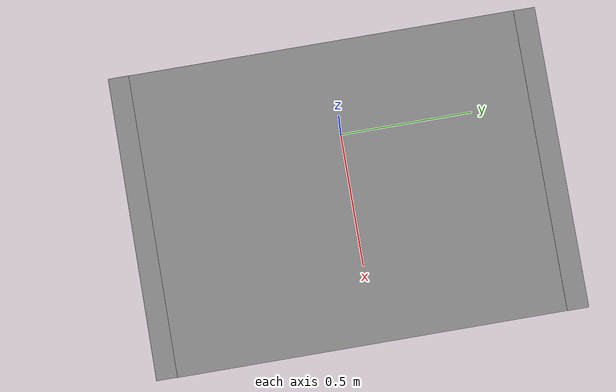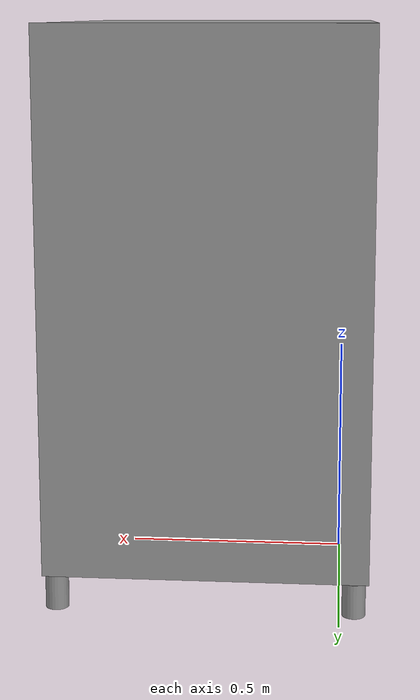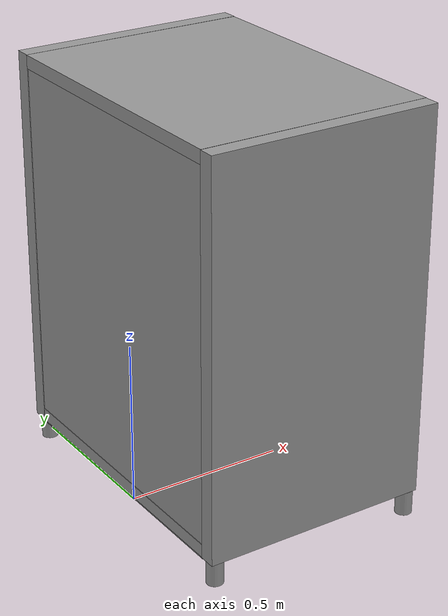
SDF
<?xml version='1.0'?>
<sdf version='1.7'>
  <model name='my_tall_drawer'>
    <link name='link'>
      <inertial>
        <mass>1</mass>
        <inertia>
          <ixx>0.166667</ixx>
          <ixy>0</ixy>
          <ixz>0</ixz>
          <iyy>0.166667</iyy>
          <iyz>0</iyz>
          <izz>0.166667</izz>
        </inertia>
        <pose>0 0 0 0 -0 0</pose>
      </inertial>
      <self_collide>0</self_collide>
      <enable_wind>0</enable_wind>
      <kinematic>0</kinematic>
      <pose>-0.03613 -0.018536 -0.061909 0 -0 0</pose>
      <gravity>1</gravity>
      <visual name='visual'>
        <geometry>
          <box>
            <size>0.05 0.9 1.17</size>
          </box>
        </geometry>
        <material>
          <script>
            <name>Gazebo/Grey</name>
            <uri>file://media/materials/scripts/gazebo.material</uri>
          </script>
          <shader type='pixel'>
            <normal_map>__default__</normal_map>
          </shader>
          <ambient>0.9 0.9 0.9 1</ambient>
          <diffuse>0.9 0.9 0.9 1</diffuse>
          <specular>0.01 0.01 0.01 1</specular>
          <emissive>0 0 0 1</emissive>
        </material>
        <pose>0 0 0.725 0 -0 0</pose>
        <transparency>0</transparency>
        <cast_shadows>1</cast_shadows>
      </visual>
      <collision name='collision'>
        <laser_retro>0</laser_retro>
        <max_contacts>10</max_contacts>
        <pose>0 0 0.725 0 -0 0</pose>
        <geometry>
          <box>
            <size>0.05 0.9 1.17</size>
          </box>
        </geometry>
        <surface>
          <friction>
            <ode>
              <mu>1</mu>
              <mu2>1</mu2>
              <fdir1>0 0 0</fdir1>
              <slip1>0</slip1>
              <slip2>0</slip2>
            </ode>
            <torsional>
              <coefficient>1</coefficient>
              <patch_radius>0</patch_radius>
              <surface_radius>0</surface_radius>
              <use_patch_radius>1</use_patch_radius>
              <ode>
                <slip>0</slip>
              </ode>
            </torsional>
          </friction>
          <bounce>
            <restitution_coefficient>0</restitution_coefficient>
            <threshold>1e+06</threshold>
          </bounce>
          <contact>
            <collide_without_contact>0</collide_without_contact>
            <collide_without_contact_bitmask>1</collide_without_contact_bitmask>
            <collide_bitmask>1</collide_bitmask>
            <ode>
              <soft_cfm>0</soft_cfm>
              <soft_erp>0.2</soft_erp>
              <kp>1e+13</kp>
              <kd>1</kd>
              <max_vel>0.01</max_vel>
              <min_depth>0</min_depth>
            </ode>
            <bullet>
              <split_impulse>1</split_impulse>
              <split_impulse_penetration_threshold>-0.01</split_impulse_penetration_threshold>
              <soft_cfm>0</soft_cfm>
              <soft_erp>0.2</soft_erp>
              <kp>1e+13</kp>
              <kd>1</kd>
            </bullet>
          </contact>
        </surface>
      </collision>
    </link>
    <link name='link_0'>
      <inertial>
        <mass>1</mass>
        <inertia>
          <ixx>0.145833</ixx>
          <ixy>0</ixy>
          <ixz>0</ixz>
          <iyy>0.145833</iyy>
          <iyz>0</iyz>
          <izz>0.125</izz>
        </inertia>
        <pose>0 0 0 0 -0 0</pose>
      </inertial>
      <pose>-0.037041 -0.491807 0.517038 0 -0 0</pose>
      <gravity>1</gravity>
      <self_collide>0</self_collide>
      <kinematic>0</kinematic>
      <enable_wind>0</enable_wind>
      <visual name='visual'>
        <pose>0 0 -0.47 0 -0 0</pose>
        <geometry>
          <cylinder>
            <radius>0.025</radius>
            <length>0.075</length>
          </cylinder>
        </geometry>
        <material>
          <lighting>1</lighting>
          <script>
            <uri>file://media/materials/scripts/gazebo.material</uri>
            <name>Gazebo/Grey</name>
          </script>
          <shader type='pixel'>
            <normal_map>__default__</normal_map>
          </shader>
          <ambient>0.9 0.9 0.9 0</ambient>
          <diffuse>0.9 0.9 0.9 1</diffuse>
          <specular>0.01 0.01 0.01 1</specular>
          <emissive>0 0 0 1</emissive>
        </material>
        <transparency>0</transparency>
        <cast_shadows>1</cast_shadows>
      </visual>
      <collision name='collision'>
        <laser_retro>0</laser_retro>
        <max_contacts>10</max_contacts>
        <pose>0 0 -0.47 0 -0 0</pose>
        <geometry>
          <cylinder>
            <radius>0.025</radius>
            <length>0.075</length>
          </cylinder>
        </geometry>
        <surface>
          <friction>
            <ode>
              <mu>1</mu>
              <mu2>1</mu2>
              <fdir1>0 0 0</fdir1>
              <slip1>0</slip1>
              <slip2>0</slip2>
            </ode>
            <torsional>
              <coefficient>1</coefficient>
              <patch_radius>0</patch_radius>
              <surface_radius>0</surface_radius>
              <use_patch_radius>1</use_patch_radius>
              <ode>
                <slip>0</slip>
              </ode>
            </torsional>
          </friction>
          <bounce>
            <restitution_coefficient>0</restitution_coefficient>
            <threshold>1e+06</threshold>
          </bounce>
          <contact>
            <collide_without_contact>0</collide_without_contact>
            <collide_without_contact_bitmask>1</collide_without_contact_bitmask>
            <collide_bitmask>1</collide_bitmask>
            <ode>
              <soft_cfm>0</soft_cfm>
              <soft_erp>0.2</soft_erp>
              <kp>1e+13</kp>
              <kd>1</kd>
              <max_vel>0.01</max_vel>
              <min_depth>0</min_depth>
            </ode>
            <bullet>
              <split_impulse>1</split_impulse>
              <split_impulse_penetration_threshold>-0.01</split_impulse_penetration_threshold>
              <soft_cfm>0</soft_cfm>
              <soft_erp>0.2</soft_erp>
              <kp>1e+13</kp>
              <kd>1</kd>
            </bullet>
          </contact>
        </surface>
      </collision>
    </link>
    <link name='link_0_clone'>
      <inertial>
        <mass>1</mass>
        <inertia>
          <ixx>0.166667</ixx>
          <ixy>0</ixy>
          <ixz>0</ixz>
          <iyy>0.166667</iyy>
          <iyz>0</iyz>
          <izz>0.166667</izz>
        </inertia>
        <pose>0 0 0 0 -0 0</pose>
      </inertial>
      <pose>0.649567 -0.03449 1.03588 0 -0 0</pose>
      <gravity>0</gravity>
      <self_collide>0</self_collide>
      <kinematic>0</kinematic>
      <enable_wind>0</enable_wind>
      <visual name='visual'>
        <pose>0 0 0 0 -0 0</pose>
        <geometry>
          <box>
            <size>0.012 0.2 0.02</size>
          </box>
        </geometry>
        <material>
          <lighting>1</lighting>
          <script>
            <uri>file://media/materials/scripts/gazebo.material</uri>
            <name>Gazebo/Grey</name>
          </script>
          <shader type='pixel'>
            <normal_map>__default__</normal_map>
          </shader>
          <ambient>0.2 0.2 0.2 0</ambient>
          <diffuse>0.2 0.2 0.2 1</diffuse>
          <specular>0.01 0.01 0.01 1</specular>
          <emissive>0 0 0 1</emissive>
        </material>
        <transparency>0</transparency>
        <cast_shadows>1</cast_shadows>
      </visual>
      <collision name='collision'>
        <laser_retro>0</laser_retro>
        <max_contacts>10</max_contacts>
        <pose>0 0 0 0 -0 0</pose>
        <geometry>
          <box>
            <size>0.012 0.2 0.02</size>
          </box>
        </geometry>
        <surface>
          <friction>
            <ode>
              <mu>1</mu>
              <mu2>1</mu2>
              <fdir1>0 0 0</fdir1>
              <slip1>0</slip1>
              <slip2>0</slip2>
            </ode>
            <torsional>
              <coefficient>1</coefficient>
              <patch_radius>0</patch_radius>
              <surface_radius>0</surface_radius>
              <use_patch_radius>1</use_patch_radius>
              <ode>
                <slip>0</slip>
              </ode>
            </torsional>
          </friction>
          <bounce>
            <restitution_coefficient>0</restitution_coefficient>
            <threshold>1e+06</threshold>
          </bounce>
          <contact>
            <collide_without_contact>0</collide_without_contact>
            <collide_without_contact_bitmask>1</collide_without_contact_bitmask>
            <collide_bitmask>1</collide_bitmask>
            <ode>
              <soft_cfm>0</soft_cfm>
              <soft_erp>0.2</soft_erp>
              <kp>1e+13</kp>
              <kd>1</kd>
              <max_vel>0.01</max_vel>
              <min_depth>0</min_depth>
            </ode>
            <bullet>
              <split_impulse>1</split_impulse>
              <split_impulse_penetration_threshold>-0.01</split_impulse_penetration_threshold>
              <soft_cfm>0</soft_cfm>
              <soft_erp>0.2</soft_erp>
              <kp>1e+13</kp>
              <kd>1</kd>
            </bullet>
          </contact>
        </surface>
      </collision>
    </link>
    <link name='link_0_clone_0'>
      <inertial>
        <mass>1</mass>
        <inertia>
          <ixx>0.145833</ixx>
          <ixy>0</ixy>
          <ixz>0</ixz>
          <iyy>0.145833</iyy>
          <iyz>0</iyz>
          <izz>0.125</izz>
        </inertia>
        <pose>0 0 0 0 -0 0</pose>
      </inertial>
      <pose>0.611334 -0.496528 0.517038 0 -0 0</pose>
      <gravity>1</gravity>
      <self_collide>0</self_collide>
      <kinematic>0</kinematic>
      <enable_wind>0</enable_wind>
      <visual name='visual'>
        <pose>0 0 -0.47 0 -0 0</pose>
        <geometry>
          <cylinder>
            <radius>0.025</radius>
            <length>0.075</length>
          </cylinder>
        </geometry>
        <material>
          <lighting>1</lighting>
          <script>
            <uri>file://media/materials/scripts/gazebo.material</uri>
            <name>Gazebo/Grey</name>
          </script>
          <shader type='pixel'>
            <normal_map>__default__</normal_map>
          </shader>
          <ambient>0.9 0.9 0.9 0</ambient>
          <diffuse>0.9 0.9 0.9 1</diffuse>
          <specular>0.01 0.01 0.01 1</specular>
          <emissive>0 0 0 1</emissive>
        </material>
        <transparency>0</transparency>
        <cast_shadows>1</cast_shadows>
      </visual>
      <collision name='collision'>
        <laser_retro>0</laser_retro>
        <max_contacts>10</max_contacts>
        <pose>0 0 -0.47 0 -0 0</pose>
        <geometry>
          <cylinder>
            <radius>0.025</radius>
            <length>0.075</length>
          </cylinder>
        </geometry>
        <surface>
          <friction>
            <ode>
              <mu>1</mu>
              <mu2>1</mu2>
              <fdir1>0 0 0</fdir1>
              <slip1>0</slip1>
              <slip2>0</slip2>
            </ode>
            <torsional>
              <coefficient>1</coefficient>
              <patch_radius>0</patch_radius>
              <surface_radius>0</surface_radius>
              <use_patch_radius>1</use_patch_radius>
              <ode>
                <slip>0</slip>
              </ode>
            </torsional>
          </friction>
          <bounce>
            <restitution_coefficient>0</restitution_coefficient>
            <threshold>1e+06</threshold>
          </bounce>
          <contact>
            <collide_without_contact>0</collide_without_contact>
            <collide_without_contact_bitmask>1</collide_without_contact_bitmask>
            <collide_bitmask>1</collide_bitmask>
            <ode>
              <soft_cfm>0</soft_cfm>
              <soft_erp>0.2</soft_erp>
              <kp>1e+13</kp>
              <kd>1</kd>
              <max_vel>0.01</max_vel>
              <min_depth>0</min_depth>
            </ode>
            <bullet>
              <split_impulse>1</split_impulse>
              <split_impulse_penetration_threshold>-0.01</split_impulse_penetration_threshold>
              <soft_cfm>0</soft_cfm>
              <soft_erp>0.2</soft_erp>
              <kp>1e+13</kp>
              <kd>1</kd>
            </bullet>
          </contact>
        </surface>
      </collision>
    </link>
    <link name='link_0_clone_1'>
      <inertial>
        <mass>1</mass>
        <inertia>
          <ixx>0.145833</ixx>
          <ixy>0</ixy>
          <ixz>0</ixz>
          <iyy>0.145833</iyy>
          <iyz>0</iyz>
          <izz>0.125</izz>
        </inertia>
        <pose>0 0 0 0 -0 0</pose>
      </inertial>
      <pose>-0.03182 0.454415 0.517038 0 -0 0</pose>
      <gravity>1</gravity>
      <self_collide>0</self_collide>
      <kinematic>0</kinematic>
      <enable_wind>0</enable_wind>
      <visual name='visual'>
        <pose>0 0 -0.47 0 -0 0</pose>
        <geometry>
          <cylinder>
            <radius>0.025</radius>
            <length>0.075</length>
          </cylinder>
        </geometry>
        <material>
          <lighting>1</lighting>
          <script>
            <uri>file://media/materials/scripts/gazebo.material</uri>
            <name>Gazebo/Grey</name>
          </script>
          <shader type='pixel'>
            <normal_map>__default__</normal_map>
          </shader>
          <ambient>0.9 0.9 0.9 0</ambient>
          <diffuse>0.9 0.9 0.9 1</diffuse>
          <specular>0.01 0.01 0.01 1</specular>
          <emissive>0 0 0 1</emissive>
        </material>
        <transparency>0</transparency>
        <cast_shadows>1</cast_shadows>
      </visual>
      <collision name='collision'>
        <laser_retro>0</laser_retro>
        <max_contacts>10</max_contacts>
        <pose>0 0 -0.47 0 -0 0</pose>
        <geometry>
          <cylinder>
            <radius>0.025</radius>
            <length>0.075</length>
          </cylinder>
        </geometry>
        <surface>
          <friction>
            <ode>
              <mu>1</mu>
              <mu2>1</mu2>
              <fdir1>0 0 0</fdir1>
              <slip1>0</slip1>
              <slip2>0</slip2>
            </ode>
            <torsional>
              <coefficient>1</coefficient>
              <patch_radius>0</patch_radius>
              <surface_radius>0</surface_radius>
              <use_patch_radius>1</use_patch_radius>
              <ode>
                <slip>0</slip>
              </ode>
            </torsional>
          </friction>
          <bounce>
            <restitution_coefficient>0</restitution_coefficient>
            <threshold>1e+06</threshold>
          </bounce>
          <contact>
            <collide_without_contact>0</collide_without_contact>
            <collide_without_contact_bitmask>1</collide_without_contact_bitmask>
            <collide_bitmask>1</collide_bitmask>
            <ode>
              <soft_cfm>0</soft_cfm>
              <soft_erp>0.2</soft_erp>
              <kp>1e+13</kp>
              <kd>1</kd>
              <max_vel>0.01</max_vel>
              <min_depth>0</min_depth>
            </ode>
            <bullet>
              <split_impulse>1</split_impulse>
              <split_impulse_penetration_threshold>-0.01</split_impulse_penetration_threshold>
              <soft_cfm>0</soft_cfm>
              <soft_erp>0.2</soft_erp>
              <kp>1e+13</kp>
              <kd>1</kd>
            </bullet>
          </contact>
        </surface>
      </collision>
    </link>
    <link name='link_0_clone_2'>
      <inertial>
        <mass>1</mass>
        <inertia>
          <ixx>0.145833</ixx>
          <ixy>0</ixy>
          <ixz>0</ixz>
          <iyy>0.145833</iyy>
          <iyz>0</iyz>
          <izz>0.125</izz>
        </inertia>
        <pose>0 0 0 0 -0 0</pose>
      </inertial>
      <pose>0.607914 0.452464 0.517038 0 -0 0</pose>
      <gravity>1</gravity>
      <self_collide>0</self_collide>
      <kinematic>0</kinematic>
      <enable_wind>0</enable_wind>
      <visual name='visual'>
        <pose>0 0 -0.47 0 -0 0</pose>
        <geometry>
          <cylinder>
            <radius>0.025</radius>
            <length>0.075</length>
          </cylinder>
        </geometry>
        <material>
          <lighting>1</lighting>
          <script>
            <uri>file://media/materials/scripts/gazebo.material</uri>
            <name>Gazebo/Grey</name>
          </script>
          <shader type='pixel'>
            <normal_map>__default__</normal_map>
          </shader>
          <ambient>0.9 0.9 0.9 0</ambient>
          <diffuse>0.9 0.9 0.9 1</diffuse>
          <specular>0.01 0.01 0.01 1</specular>
          <emissive>0 0 0 1</emissive>
        </material>
        <transparency>0</transparency>
        <cast_shadows>1</cast_shadows>
      </visual>
      <collision name='collision'>
        <laser_retro>0</laser_retro>
        <max_contacts>10</max_contacts>
        <pose>0 0 -0.47 0 -0 0</pose>
        <geometry>
          <cylinder>
            <radius>0.025</radius>
            <length>0.075</length>
          </cylinder>
        </geometry>
        <surface>
          <friction>
            <ode>
              <mu>1</mu>
              <mu2>1</mu2>
              <fdir1>0 0 0</fdir1>
              <slip1>0</slip1>
              <slip2>0</slip2>
            </ode>
            <torsional>
              <coefficient>1</coefficient>
              <patch_radius>0</patch_radius>
              <surface_radius>0</surface_radius>
              <use_patch_radius>1</use_patch_radius>
              <ode>
                <slip>0</slip>
              </ode>
            </torsional>
          </friction>
          <bounce>
            <restitution_coefficient>0</restitution_coefficient>
            <threshold>1e+06</threshold>
          </bounce>
          <contact>
            <collide_without_contact>0</collide_without_contact>
            <collide_without_contact_bitmask>1</collide_without_contact_bitmask>
            <collide_bitmask>1</collide_bitmask>
            <ode>
              <soft_cfm>0</soft_cfm>
              <soft_erp>0.2</soft_erp>
              <kp>1e+13</kp>
              <kd>1</kd>
              <max_vel>0.01</max_vel>
              <min_depth>0</min_depth>
            </ode>
            <bullet>
              <split_impulse>1</split_impulse>
              <split_impulse_penetration_threshold>-0.01</split_impulse_penetration_threshold>
              <soft_cfm>0</soft_cfm>
              <soft_erp>0.2</soft_erp>
              <kp>1e+13</kp>
              <kd>1</kd>
            </bullet>
          </contact>
        </surface>
      </collision>
    </link>
    <link name='link_0_clone_clone'>
      <inertial>
        <mass>1</mass>
        <inertia>
          <ixx>0.166667</ixx>
          <ixy>0</ixy>
          <ixz>0</ixz>
          <iyy>0.166667</iyy>
          <iyz>0</iyz>
          <izz>0.166667</izz>
        </inertia>
        <pose>0 0 0 0 -0 0</pose>
      </inertial>
      <pose>0.648574 -0.032127 0.308738 0 -0 0</pose>
      <gravity>0</gravity>
      <self_collide>0</self_collide>
      <kinematic>0</kinematic>
      <enable_wind>0</enable_wind>
      <visual name='visual'>
        <pose>0 0 0 0 -0 0</pose>
        <geometry>
          <box>
            <size>0.012 0.2 0.02</size>
          </box>
        </geometry>
        <material>
          <lighting>1</lighting>
          <script>
            <uri>file://media/materials/scripts/gazebo.material</uri>
            <name>Gazebo/Grey</name>
          </script>
          <shader type='pixel'>
            <normal_map>__default__</normal_map>
          </shader>
          <ambient>0.2 0.2 0.2 0</ambient>
          <diffuse>0.2 0.2 0.2 1</diffuse>
          <specular>0.01 0.01 0.01 1</specular>
          <emissive>0 0 0 1</emissive>
        </material>
        <transparency>0</transparency>
        <cast_shadows>1</cast_shadows>
      </visual>
      <collision name='collision'>
        <laser_retro>0</laser_retro>
        <max_contacts>10</max_contacts>
        <pose>0 0 0 0 -0 0</pose>
        <geometry>
          <box>
            <size>0.012 0.2 0.02</size>
          </box>
        </geometry>
        <surface>
          <friction>
            <ode>
              <mu>1</mu>
              <mu2>1</mu2>
              <fdir1>0 0 0</fdir1>
              <slip1>0</slip1>
              <slip2>0</slip2>
            </ode>
            <torsional>
              <coefficient>1</coefficient>
              <patch_radius>0</patch_radius>
              <surface_radius>0</surface_radius>
              <use_patch_radius>1</use_patch_radius>
              <ode>
                <slip>0</slip>
              </ode>
            </torsional>
          </friction>
          <bounce>
            <restitution_coefficient>0</restitution_coefficient>
            <threshold>1e+06</threshold>
          </bounce>
          <contact>
            <collide_without_contact>0</collide_without_contact>
            <collide_without_contact_bitmask>1</collide_without_contact_bitmask>
            <collide_bitmask>1</collide_bitmask>
            <ode>
              <soft_cfm>0</soft_cfm>
              <soft_erp>0.2</soft_erp>
              <kp>1e+13</kp>
              <kd>1</kd>
              <max_vel>0.01</max_vel>
              <min_depth>0</min_depth>
            </ode>
            <bullet>
              <split_impulse>1</split_impulse>
              <split_impulse_penetration_threshold>-0.01</split_impulse_penetration_threshold>
              <soft_cfm>0</soft_cfm>
              <soft_erp>0.2</soft_erp>
              <kp>1e+13</kp>
              <kd>1</kd>
            </bullet>
          </contact>
        </surface>
      </collision>
    </link>
    <link name='link_0_clone_clone_0'>
      <inertial>
        <mass>1</mass>
        <inertia>
          <ixx>0.166667</ixx>
          <ixy>0</ixy>
          <ixz>0</ixz>
          <iyy>0.166667</iyy>
          <iyz>0</iyz>
          <izz>0.166667</izz>
        </inertia>
        <pose>0 0 0 0 -0 0</pose>
      </inertial>
      <pose>0.650881 -0.037424 0.670231 0 -0 0</pose>
      <gravity>0</gravity>
      <self_collide>0</self_collide>
      <kinematic>0</kinematic>
      <enable_wind>0</enable_wind>
      <visual name='visual'>
        <pose>0 0 0 0 -0 0</pose>
        <geometry>
          <box>
            <size>0.012 0.2 0.02</size>
          </box>
        </geometry>
        <material>
          <lighting>1</lighting>
          <script>
            <uri>file://media/materials/scripts/gazebo.material</uri>
            <name>Gazebo/Grey</name>
          </script>
          <shader type='pixel'>
            <normal_map>__default__</normal_map>
          </shader>
          <ambient>0.2 0.2 0.2 0</ambient>
          <diffuse>0.2 0.2 0.2 1</diffuse>
          <specular>0.01 0.01 0.01 1</specular>
          <emissive>0 0 0 1</emissive>
        </material>
        <transparency>0</transparency>
        <cast_shadows>1</cast_shadows>
      </visual>
      <collision name='collision'>
        <laser_retro>0</laser_retro>
        <max_contacts>10</max_contacts>
        <pose>0 0 0 0 -0 0</pose>
        <geometry>
          <box>
            <size>0.012 0.2 0.02</size>
          </box>
        </geometry>
        <surface>
          <friction>
            <ode>
              <mu>1</mu>
              <mu2>1</mu2>
              <fdir1>0 0 0</fdir1>
              <slip1>0</slip1>
              <slip2>0</slip2>
            </ode>
            <torsional>
              <coefficient>1</coefficient>
              <patch_radius>0</patch_radius>
              <surface_radius>0</surface_radius>
              <use_patch_radius>1</use_patch_radius>
              <ode>
                <slip>0</slip>
              </ode>
            </torsional>
          </friction>
          <bounce>
            <restitution_coefficient>0</restitution_coefficient>
            <threshold>1e+06</threshold>
          </bounce>
          <contact>
            <collide_without_contact>0</collide_without_contact>
            <collide_without_contact_bitmask>1</collide_without_contact_bitmask>
            <collide_bitmask>1</collide_bitmask>
            <ode>
              <soft_cfm>0</soft_cfm>
              <soft_erp>0.2</soft_erp>
              <kp>1e+13</kp>
              <kd>1</kd>
              <max_vel>0.01</max_vel>
              <min_depth>0</min_depth>
            </ode>
            <bullet>
              <split_impulse>1</split_impulse>
              <split_impulse_penetration_threshold>-0.01</split_impulse_penetration_threshold>
              <soft_cfm>0</soft_cfm>
              <soft_erp>0.2</soft_erp>
              <kp>1e+13</kp>
              <kd>1</kd>
            </bullet>
          </contact>
        </surface>
      </collision>
    </link>
    <link name='link_clone'>
      <inertial>
        <mass>1</mass>
        <inertia>
          <ixx>0.166667</ixx>
          <ixy>0</ixy>
          <ixz>0</ixz>
          <iyy>0.166667</iyy>
          <iyz>0</iyz>
          <izz>0.166667</izz>
        </inertia>
        <pose>0 0 0 0 -0 0</pose>
      </inertial>
      <self_collide>0</self_collide>
      <enable_wind>0</enable_wind>
      <kinematic>0</kinematic>
      <pose>0.28891 -0.018651 -1.19613 1.1e-05 -0.001065 2e-06</pose>
      <gravity>1</gravity>
      <visual name='visual'>
        <geometry>
          <box>
            <size>0.7 0.9 0.04</size>
          </box>
        </geometry>
        <material>
          <script>
            <name>Gazebo/Grey</name>
            <uri>file://media/materials/scripts/gazebo.material</uri>
          </script>
          <shader type='pixel'>
            <normal_map>__default__</normal_map>
          </shader>
          <ambient>0.9 0.9 0.9 1</ambient>
          <diffuse>0.9 0.9 0.9 1</diffuse>
          <specular>0.01 0.01 0.01 1</specular>
          <emissive>0 0 0 1</emissive>
        </material>
        <pose>0 0 1.3 0 -0 0</pose>
        <transparency>0</transparency>
        <cast_shadows>1</cast_shadows>
      </visual>
      <collision name='collision'>
        <laser_retro>0</laser_retro>
        <max_contacts>10</max_contacts>
        <pose>0 0 1.3 0 -0 0</pose>
        <geometry>
          <box>
            <size>0.7 0.9 0.04</size>
          </box>
        </geometry>
        <surface>
          <friction>
            <ode>
              <mu>1</mu>
              <mu2>1</mu2>
              <fdir1>0 0 0</fdir1>
              <slip1>0</slip1>
              <slip2>0</slip2>
            </ode>
            <torsional>
              <coefficient>1</coefficient>
              <patch_radius>0</patch_radius>
              <surface_radius>0</surface_radius>
              <use_patch_radius>1</use_patch_radius>
              <ode>
                <slip>0</slip>
              </ode>
            </torsional>
          </friction>
          <bounce>
            <restitution_coefficient>0</restitution_coefficient>
            <threshold>1e+06</threshold>
          </bounce>
          <contact>
            <collide_without_contact>0</collide_without_contact>
            <collide_without_contact_bitmask>1</collide_without_contact_bitmask>
            <collide_bitmask>1</collide_bitmask>
            <ode>
              <soft_cfm>0</soft_cfm>
              <soft_erp>0.2</soft_erp>
              <kp>1e+13</kp>
              <kd>1</kd>
              <max_vel>0.01</max_vel>
              <min_depth>0</min_depth>
            </ode>
            <bullet>
              <split_impulse>1</split_impulse>
              <split_impulse_penetration_threshold>-0.01</split_impulse_penetration_threshold>
              <soft_cfm>0</soft_cfm>
              <soft_erp>0.2</soft_erp>
              <kp>1e+13</kp>
              <kd>1</kd>
            </bullet>
          </contact>
        </surface>
      </collision>
    </link>
    <link name='link_clone_0'>
      <inertial>
        <mass>1</mass>
        <inertia>
          <ixx>0.166667</ixx>
          <ixy>0</ixy>
          <ixz>0</ixz>
          <iyy>0.166667</iyy>
          <iyz>0</iyz>
          <izz>0.166667</izz>
        </inertia>
        <pose>0 0 0 0 -0 0</pose>
      </inertial>
      <self_collide>0</self_collide>
      <enable_wind>0</enable_wind>
      <kinematic>0</kinematic>
      <pose>0.285628 -0.49449 -0.040786 0 -0 0</pose>
      <gravity>1</gravity>
      <visual name='visual'>
        <geometry>
          <box>
            <size>0.05 0.7 1.17</size>
          </box>
        </geometry>
        <material>
          <script>
            <name>Gazebo/Grey</name>
            <uri>file://media/materials/scripts/gazebo.material</uri>
          </script>
          <shader type='pixel'>
            <normal_map>__default__</normal_map>
          </shader>
          <ambient>0.9 0.9 0.9 1</ambient>
          <diffuse>0.9 0.9 0.9 1</diffuse>
          <specular>0.01 0.01 0.01 1</specular>
          <emissive>0 0 0 1</emissive>
        </material>
        <pose>0 0 0.71 0 -0 1.5707</pose>
        <transparency>0</transparency>
        <cast_shadows>1</cast_shadows>
      </visual>
      <collision name='collision'>
        <laser_retro>0</laser_retro>
        <max_contacts>10</max_contacts>
        <pose>0 0 0.71 0 -0 1.5707</pose>
        <geometry>
          <box>
            <size>0.05 0.7 1.17</size>
          </box>
        </geometry>
        <surface>
          <friction>
            <ode>
              <mu>1</mu>
              <mu2>1</mu2>
              <fdir1>0 0 0</fdir1>
              <slip1>0</slip1>
              <slip2>0</slip2>
            </ode>
            <torsional>
              <coefficient>1</coefficient>
              <patch_radius>0</patch_radius>
              <surface_radius>0</surface_radius>
              <use_patch_radius>1</use_patch_radius>
              <ode>
                <slip>0</slip>
              </ode>
            </torsional>
          </friction>
          <bounce>
            <restitution_coefficient>0</restitution_coefficient>
            <threshold>1e+06</threshold>
          </bounce>
          <contact>
            <collide_without_contact>0</collide_without_contact>
            <collide_without_contact_bitmask>1</collide_without_contact_bitmask>
            <collide_bitmask>1</collide_bitmask>
            <ode>
              <soft_cfm>0</soft_cfm>
              <soft_erp>0.2</soft_erp>
              <kp>1e+13</kp>
              <kd>1</kd>
              <max_vel>0.01</max_vel>
              <min_depth>0</min_depth>
            </ode>
            <bullet>
              <split_impulse>1</split_impulse>
              <split_impulse_penetration_threshold>-0.01</split_impulse_penetration_threshold>
              <soft_cfm>0</soft_cfm>
              <soft_erp>0.2</soft_erp>
              <kp>1e+13</kp>
              <kd>1</kd>
            </bullet>
          </contact>
        </surface>
      </collision>
    </link>
    <link name='link_clone_0_clone'>
      <inertial>
        <mass>1</mass>
        <inertia>
          <ixx>0.166667</ixx>
          <ixy>0</ixy>
          <ixz>0</ixz>
          <iyy>0.166667</iyy>
          <iyz>0</iyz>
          <izz>0.166667</izz>
        </inertia>
        <pose>0 0 0 0 -0 0</pose>
      </inertial>
      <self_collide>0</self_collide>
      <enable_wind>0</enable_wind>
      <kinematic>0</kinematic>
      <pose>0.286617 0.453061 -0.03976 0 -0 0</pose>
      <gravity>1</gravity>
      <visual name='visual'>
        <geometry>
          <box>
            <size>0.05 0.7 1.17</size>
          </box>
        </geometry>
        <material>
          <script>
            <name>Gazebo/Grey</name>
            <uri>file://media/materials/scripts/gazebo.material</uri>
          </script>
          <shader type='pixel'>
            <normal_map>__default__</normal_map>
          </shader>
          <ambient>0.9 0.9 0.9 1</ambient>
          <diffuse>0.9 0.9 0.9 1</diffuse>
          <specular>0.01 0.01 0.01 1</specular>
          <emissive>0 0 0 1</emissive>
        </material>
        <pose>0 0 0.71 0 -0 1.5707</pose>
        <transparency>0</transparency>
        <cast_shadows>1</cast_shadows>
      </visual>
      <collision name='collision'>
        <laser_retro>0</laser_retro>
        <max_contacts>10</max_contacts>
        <pose>0 0 0.71 0 -0 1.5707</pose>
        <geometry>
          <box>
            <size>0.05 0.7 1.17</size>
          </box>
        </geometry>
        <surface>
          <friction>
            <ode>
              <mu>1</mu>
              <mu2>1</mu2>
              <fdir1>0 0 0</fdir1>
              <slip1>0</slip1>
              <slip2>0</slip2>
            </ode>
            <torsional>
              <coefficient>1</coefficient>
              <patch_radius>0</patch_radius>
              <surface_radius>0</surface_radius>
              <use_patch_radius>1</use_patch_radius>
              <ode>
                <slip>0</slip>
              </ode>
            </torsional>
          </friction>
          <bounce>
            <restitution_coefficient>0</restitution_coefficient>
            <threshold>1e+06</threshold>
          </bounce>
          <contact>
            <collide_without_contact>0</collide_without_contact>
            <collide_without_contact_bitmask>1</collide_without_contact_bitmask>
            <collide_bitmask>1</collide_bitmask>
            <ode>
              <soft_cfm>0</soft_cfm>
              <soft_erp>0.2</soft_erp>
              <kp>1e+13</kp>
              <kd>1</kd>
              <max_vel>0.01</max_vel>
              <min_depth>0</min_depth>
            </ode>
            <bullet>
              <split_impulse>1</split_impulse>
              <split_impulse_penetration_threshold>-0.01</split_impulse_penetration_threshold>
              <soft_cfm>0</soft_cfm>
              <soft_erp>0.2</soft_erp>
              <kp>1e+13</kp>
              <kd>1</kd>
            </bullet>
          </contact>
        </surface>
      </collision>
    </link>
    <link name='link_clone_1_clone'>
      <inertial>
        <mass>1</mass>
        <inertia>
          <ixx>0.166667</ixx>
          <ixy>0</ixy>
          <ixz>0</ixz>
          <iyy>0.166667</iyy>
          <iyz>0</iyz>
          <izz>0.166667</izz>
        </inertia>
        <pose>0 0 0 0 -0 0</pose>
      </inertial>
      <self_collide>0</self_collide>
      <enable_wind>0</enable_wind>
      <kinematic>0</kinematic>
      <pose>0.617981 -0.022509 -0.070781 0 -0 0</pose>
      <gravity>1</gravity>
      <visual name='visual'>
        <geometry>
          <box>
            <size>0.05 0.9 0.35</size>
          </box>
        </geometry>
        <material>
          <script>
            <name>Gazebo/Grey</name>
            <uri>file://media/materials/scripts/gazebo.material</uri>
          </script>
          <shader type='pixel'>
            <normal_map>__default__</normal_map>
          </shader>
          <ambient>0.9 0.9 0.9 1</ambient>
          <diffuse>0.9 0.9 0.9 1</diffuse>
          <specular>0.01 0.01 0.01 1</specular>
          <emissive>0 0 0 1</emissive>
        </material>
        <pose>0 0 0.38 0 -0 0</pose>
        <transparency>0</transparency>
        <cast_shadows>1</cast_shadows>
      </visual>
      <collision name='collision'>
        <laser_retro>0</laser_retro>
        <max_contacts>10</max_contacts>
        <pose>0 0 0.38 0 -0 0</pose>
        <geometry>
          <box>
            <size>0.05 0.9 0.35</size>
          </box>
        </geometry>
        <surface>
          <friction>
            <ode>
              <mu>1</mu>
              <mu2>1</mu2>
              <fdir1>0 0 0</fdir1>
              <slip1>0</slip1>
              <slip2>0</slip2>
            </ode>
            <torsional>
              <coefficient>1</coefficient>
              <patch_radius>0</patch_radius>
              <surface_radius>0</surface_radius>
              <use_patch_radius>1</use_patch_radius>
              <ode>
                <slip>0</slip>
              </ode>
            </torsional>
          </friction>
          <bounce>
            <restitution_coefficient>0</restitution_coefficient>
            <threshold>1e+06</threshold>
          </bounce>
          <contact>
            <collide_without_contact>0</collide_without_contact>
            <collide_without_contact_bitmask>1</collide_without_contact_bitmask>
            <collide_bitmask>1</collide_bitmask>
            <ode>
              <soft_cfm>0</soft_cfm>
              <soft_erp>0.2</soft_erp>
              <kp>1e+13</kp>
              <kd>1</kd>
              <max_vel>0.01</max_vel>
              <min_depth>0</min_depth>
            </ode>
            <bullet>
              <split_impulse>1</split_impulse>
              <split_impulse_penetration_threshold>-0.01</split_impulse_penetration_threshold>
              <soft_cfm>0</soft_cfm>
              <soft_erp>0.2</soft_erp>
              <kp>1e+13</kp>
              <kd>1</kd>
            </bullet>
          </contact>
        </surface>
      </collision>
    </link>
    <link name='link_clone_1_clone_clone'>
      <inertial>
        <mass>1</mass>
        <inertia>
          <ixx>0.166667</ixx>
          <ixy>0</ixy>
          <ixz>0</ixz>
          <iyy>0.166667</iyy>
          <iyz>0</iyz>
          <izz>0.166667</izz>
        </inertia>
        <pose>0 0 0 0 -0 0</pose>
      </inertial>
      <self_collide>0</self_collide>
      <enable_wind>0</enable_wind>
      <kinematic>0</kinematic>
      <pose>0.619149 -0.021678 0.28766 0 -0 0</pose>
      <gravity>1</gravity>
      <visual name='visual'>
        <geometry>
          <box>
            <size>0.05 0.9 0.35</size>
          </box>
        </geometry>
        <material>
          <script>
            <name>Gazebo/Grey</name>
            <uri>file://media/materials/scripts/gazebo.material</uri>
          </script>
          <shader type='pixel'>
            <normal_map>__default__</normal_map>
          </shader>
          <ambient>0.9 0.9 0.9 1</ambient>
          <diffuse>0.9 0.9 0.9 1</diffuse>
          <specular>0.01 0.01 0.01 1</specular>
          <emissive>0 0 0 1</emissive>
        </material>
        <pose>0 0 0.38 0 -0 0</pose>
        <transparency>0</transparency>
        <cast_shadows>1</cast_shadows>
      </visual>
      <collision name='collision'>
        <laser_retro>0</laser_retro>
        <max_contacts>10</max_contacts>
        <pose>0 0 0.38 0 -0 0</pose>
        <geometry>
          <box>
            <size>0.05 0.9 0.35</size>
          </box>
        </geometry>
        <surface>
          <friction>
            <ode>
              <mu>1</mu>
              <mu2>1</mu2>
              <fdir1>0 0 0</fdir1>
              <slip1>0</slip1>
              <slip2>0</slip2>
            </ode>
            <torsional>
              <coefficient>1</coefficient>
              <patch_radius>0</patch_radius>
              <surface_radius>0</surface_radius>
              <use_patch_radius>1</use_patch_radius>
              <ode>
                <slip>0</slip>
              </ode>
            </torsional>
          </friction>
          <bounce>
            <restitution_coefficient>0</restitution_coefficient>
            <threshold>1e+06</threshold>
          </bounce>
          <contact>
            <collide_without_contact>0</collide_without_contact>
            <collide_without_contact_bitmask>1</collide_without_contact_bitmask>
            <collide_bitmask>1</collide_bitmask>
            <ode>
              <soft_cfm>0</soft_cfm>
              <soft_erp>0.2</soft_erp>
              <kp>1e+13</kp>
              <kd>1</kd>
              <max_vel>0.01</max_vel>
              <min_depth>0</min_depth>
            </ode>
            <bullet>
              <split_impulse>1</split_impulse>
              <split_impulse_penetration_threshold>-0.01</split_impulse_penetration_threshold>
              <soft_cfm>0</soft_cfm>
              <soft_erp>0.2</soft_erp>
              <kp>1e+13</kp>
              <kd>1</kd>
            </bullet>
          </contact>
        </surface>
      </collision>
    </link>
    <link name='link_clone_1_clone_clone_clone'>
      <inertial>
        <mass>1</mass>
        <inertia>
          <ixx>0.166667</ixx>
          <ixy>0</ixy>
          <ixz>0</ixz>
          <iyy>0.166667</iyy>
          <iyz>0</iyz>
          <izz>0.166667</izz>
        </inertia>
        <pose>0 0 0 0 -0 0</pose>
      </inertial>
      <self_collide>0</self_collide>
      <enable_wind>0</enable_wind>
      <kinematic>0</kinematic>
      <pose>0.616281 -0.021483 0.647925 0 -0 0</pose>
      <gravity>1</gravity>
      <visual name='visual'>
        <geometry>
          <box>
            <size>0.05 0.9 0.35</size>
          </box>
        </geometry>
        <material>
          <script>
            <name>Gazebo/Grey</name>
            <uri>file://media/materials/scripts/gazebo.material</uri>
          </script>
          <shader type='pixel'>
            <normal_map>__default__</normal_map>
          </shader>
          <ambient>0.9 0.9 0.9 1</ambient>
          <diffuse>0.9 0.9 0.9 1</diffuse>
          <specular>0.01 0.01 0.01 1</specular>
          <emissive>0 0 0 1</emissive>
        </material>
        <pose>0 0 0.38 0 -0 0</pose>
        <transparency>0</transparency>
        <cast_shadows>1</cast_shadows>
      </visual>
      <collision name='collision'>
        <laser_retro>0</laser_retro>
        <max_contacts>10</max_contacts>
        <pose>0 0 0.38 0 -0 0</pose>
        <geometry>
          <box>
            <size>0.05 0.9 0.35</size>
          </box>
        </geometry>
        <surface>
          <friction>
            <ode>
              <mu>1</mu>
              <mu2>1</mu2>
              <fdir1>0 0 0</fdir1>
              <slip1>0</slip1>
              <slip2>0</slip2>
            </ode>
            <torsional>
              <coefficient>1</coefficient>
              <patch_radius>0</patch_radius>
              <surface_radius>0</surface_radius>
              <use_patch_radius>1</use_patch_radius>
              <ode>
                <slip>0</slip>
              </ode>
            </torsional>
          </friction>
          <bounce>
            <restitution_coefficient>0</restitution_coefficient>
            <threshold>1e+06</threshold>
          </bounce>
          <contact>
            <collide_without_contact>0</collide_without_contact>
            <collide_without_contact_bitmask>1</collide_without_contact_bitmask>
            <collide_bitmask>1</collide_bitmask>
            <ode>
              <soft_cfm>0</soft_cfm>
              <soft_erp>0.2</soft_erp>
              <kp>1e+13</kp>
              <kd>1</kd>
              <max_vel>0.01</max_vel>
              <min_depth>0</min_depth>
            </ode>
            <bullet>
              <split_impulse>1</split_impulse>
              <split_impulse_penetration_threshold>-0.01</split_impulse_penetration_threshold>
              <soft_cfm>0</soft_cfm>
              <soft_erp>0.2</soft_erp>
              <kp>1e+13</kp>
              <kd>1</kd>
            </bullet>
          </contact>
        </surface>
      </collision>
    </link>
    <link name='link_clone_clone_0'>
      <inertial>
        <mass>1</mass>
        <inertia>
          <ixx>0.166667</ixx>
          <ixy>0</ixy>
          <ixz>0</ixz>
          <iyy>0.166667</iyy>
          <iyz>0</iyz>
          <izz>0.166667</izz>
        </inertia>
        <pose>0 0 0 0 -0 0</pose>
      </inertial>
      <self_collide>0</self_collide>
      <enable_wind>0</enable_wind>
      <kinematic>0</kinematic>
      <pose>0.286116 -0.021247 1.16784 2.2e-05 0.000604 0.000114</pose>
      <gravity>1</gravity>
      <visual name='visual'>
        <geometry>
          <box>
            <size>0.7 0.9 0.04</size>
          </box>
        </geometry>
        <material>
          <script>
            <name>Gazebo/Grey</name>
            <uri>file://media/materials/scripts/gazebo.material</uri>
          </script>
          <shader type='pixel'>
            <normal_map>__default__</normal_map>
          </shader>
          <ambient>0.9 0.9 0.9 1</ambient>
          <diffuse>0.9 0.9 0.9 1</diffuse>
          <specular>0.01 0.01 0.01 1</specular>
          <emissive>0 0 0 1</emissive>
        </material>
        <pose>0 0 0.067 0 -0 0</pose>
        <transparency>0</transparency>
        <cast_shadows>1</cast_shadows>
      </visual>
      <collision name='collision'>
        <laser_retro>0</laser_retro>
        <max_contacts>10</max_contacts>
        <pose>0 0 0.067 0 -0 0</pose>
        <geometry>
          <box>
            <size>0.7 0.9 0.04</size>
          </box>
        </geometry>
        <surface>
          <friction>
            <ode>
              <mu>1</mu>
              <mu2>1</mu2>
              <fdir1>0 0 0</fdir1>
              <slip1>0</slip1>
              <slip2>0</slip2>
            </ode>
            <torsional>
              <coefficient>1</coefficient>
              <patch_radius>0</patch_radius>
              <surface_radius>0</surface_radius>
              <use_patch_radius>1</use_patch_radius>
              <ode>
                <slip>0</slip>
              </ode>
            </torsional>
          </friction>
          <bounce>
            <restitution_coefficient>0</restitution_coefficient>
            <threshold>1e+06</threshold>
          </bounce>
          <contact>
            <collide_without_contact>0</collide_without_contact>
            <collide_without_contact_bitmask>1</collide_without_contact_bitmask>
            <collide_bitmask>1</collide_bitmask>
            <ode>
              <soft_cfm>0</soft_cfm>
              <soft_erp>0.2</soft_erp>
              <kp>1e+13</kp>
              <kd>1</kd>
              <max_vel>0.01</max_vel>
              <min_depth>0</min_depth>
            </ode>
            <bullet>
              <split_impulse>1</split_impulse>
              <split_impulse_penetration_threshold>-0.01</split_impulse_penetration_threshold>
              <soft_cfm>0</soft_cfm>
              <soft_erp>0.2</soft_erp>
              <kp>1e+13</kp>
              <kd>1</kd>
            </bullet>
          </contact>
        </surface>
      </collision>
    </link>
    <static>1</static>
    <allow_auto_disable>1</allow_auto_disable>
  </model>
</sdf>
